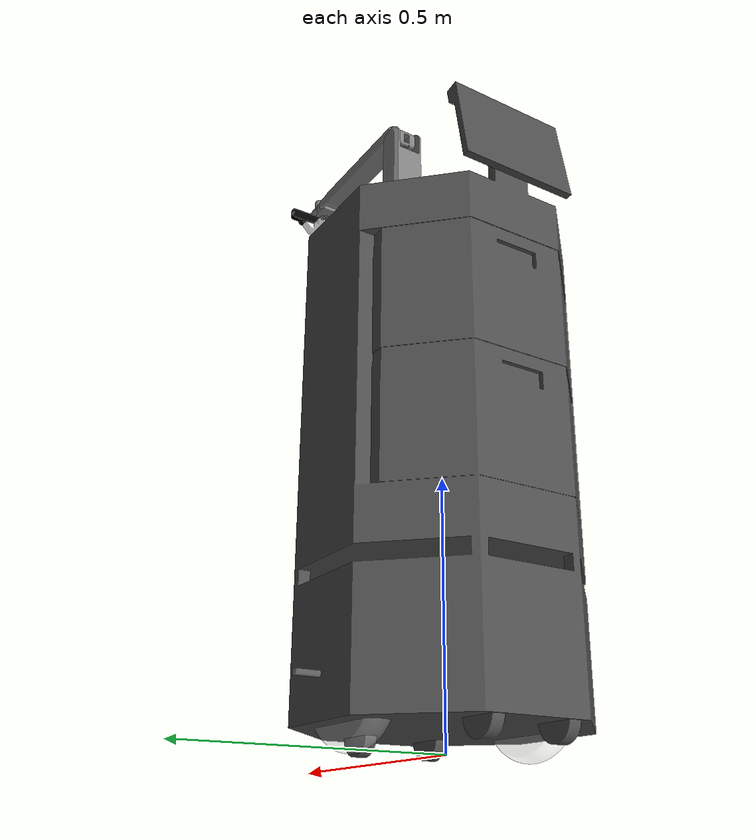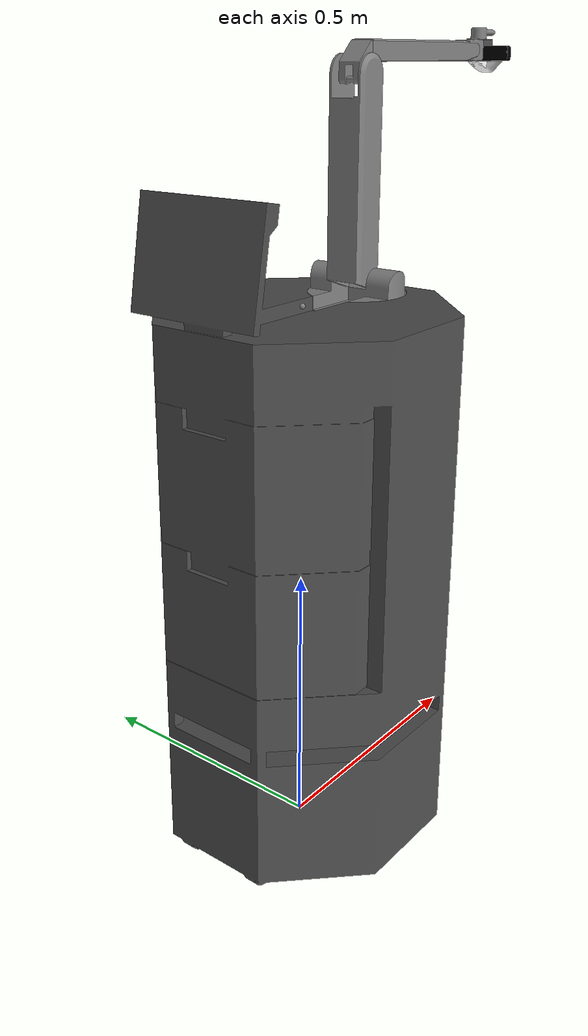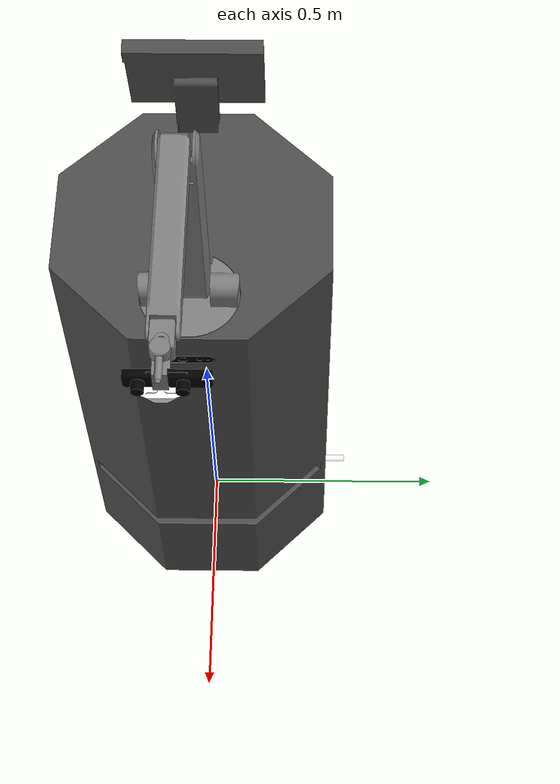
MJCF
<mujoco model="gc_manipulator">

    <!-- Mesh -->
    <compiler angle="radian" meshdir="./mesh" autolimits='true' />

    <!-- Option -->
    <option timestep="0.002" iterations="100" solver="Newton" gravity="0 0 -9.81" integrator="RK4"></option>

    <asset>
        <mesh name="base" file="base.stl" scale="0.001 0.001 0.001" />
        <mesh name="wheel" file="wheel.stl" scale="0.001 0.001 0.001" />
        <mesh name="camera_front" file="camera.stl" scale="0.001 0.001 0.001" />
        <mesh name="mani_ground" file="mani_ground.stl" scale="0.001 0.001 0.001" />
        <mesh name="mani_lnik1" file="mani_lnik1.stl" scale="0.001 0.001 0.001" />
        <mesh name="mani_link4" file="mani_link4.stl" scale="0.001 0.001 0.001" />
        <mesh name="mani_link5" file="mani_link5.stl" scale="0.001 0.001 0.001" />
        <mesh name="mani_link6" file="mani_link6.stl" scale="0.001 0.001 0.001" />
        <mesh name="mani_knock_tip" file="mani_knock_tip.stl" scale="0.001 0.001 0.001" />
        <mesh name="mani_zed" file="mani_zed.stl" scale="0.001 0.001 0.001" />

        <!-- for lidar sensor -->
        <mesh name="gc_lidar" file="lidar.stl" scale="0.001 0.001 0.001" />
    </asset>

    <default>
        <default class="gc_wheel">
            <geom fitscale="1.2" type="ellipsoid" friction="2.0 0.01 0.0" contype="1"
                conaffinity="0" mesh="wheel" mass="0.498952" />
        </default>
    </default>

    <worldbody>
        <body name="gc_mobile" pos="0 0 0.005">
            <!-- gc mobile base -->
            <geom type="mesh" rgba="0.3 0.3 0.3 1.0" contype="1" conaffinity="1" group="1"
                mesh="base" friction="0.01 0.01 0.00" priority="1" />
            <geom pos="0.244842 0.0175 0.935" type="mesh" contype="1" rgba="0 0 0 1" conaffinity="1"
                group="1" mesh="camera_front" />
            <joint name="gc_mobile_base_joint" type="free" />

            <!-- for sensor -->
            <site name="center_of_mass" pos="0 0 0.5" size="0.01" />
            <site name="gc_imu" pos="0.0 0 1.0" />
            <geom name="gc_lidar" pos="0 0 0.27" type="mesh" mass="0.180" mesh="gc_lidar"/>

            <body name="gc_wheel_fr" pos="0 0.1872 0.11" euler="0 0 0">
                <joint name="gc_mobile_right_wheel" pos="0 0 0" axis="0 1 0" range="-10 10"
                    limited="false" />
                <geom class="gc_wheel" type="mesh" contype="1" conaffinity="1" group="1"
                    rgba="1 1 1 0.3" />
            </body>

            <body name="gc_wheel_fl" pos="0 -0.1872 0.11">
                <joint name="gc_mobile_left_wheel" pos="0 0 0" axis="0 1 0" range="-10 10"
                    limited="false" />
                <geom class="gc_wheel" type="mesh" contype="1" conaffinity="1" group="1"
                    rgba="1 1 1 0.3" />
            </body>

            <body name="gc_manipulator_link1" pos="0.1565 0 1.02496">
                <inertial pos="0 0 0" quat="0.820473 0.339851 -0.17592 0.424708" mass="1"
                    diaginertia="1 1 1" />
                <joint name="gc_manipulator_joint1" pos="0 0 0" axis="0 0 1" limited="true"
                    range="-1.5708 1.5708" armature="0.1" damping="200" />
                <geom type="mesh" contype="1" conaffinity="1" group="1" mesh="mani_ground" />
                <body name="gc_manipulator_link2" pos="0 0 0">
                    <inertial pos="0.01 0 0" quat="0.820473 0.339851 -0.17592 0.424708" mass="1"
                        diaginertia="1 1 1" />
                    <joint name="gc_manipulator_joint2" pos="0 0 0" axis="0 1 0" limited="true"
                        range="-1.22173 1.5708" armature="0.1" damping="200" />
                    <geom quat="0.707107 0 0.707107 0" type="mesh" contype="1" conaffinity="1"
                        group="1" mesh="mani_lnik1" />
                    <body name="gc_manipulator_link3" pos="0 0 0.34">
                        <inertial pos="0.01 0 0" quat="0.820473 0.339851 -0.17592 0.424708" mass="1"
                            diaginertia="1 1 1" />
                        <joint name="gc_manipulator_joint3" pos="0 0 0" axis="0 1 0" limited="true"
                            range="-1.0472 1.5708" armature="0.1" damping="15" />
                        <geom type="mesh" contype="0" conaffinity="1" group="1" mesh="mani_link4" />
                        <body name="gc_manipulator_link4" pos="0.33787 0 0.038">
                            <inertial pos="0.01 0 0" quat="0.820473 0.339851 -0.17592 0.424708"
                                mass="1" diaginertia="1 1 1" />
                            <joint name="gc_manipulator_joint4" pos="0 0 0" axis="0 1 0"
                                limited="true" range="-1.74533 1.74533" armature="0.1" damping="15" />
                            <geom type="mesh" contype="0" conaffinity="1" group="1"
                                mesh="mani_link5" />
                            <body name="gc_manipulator_link5" pos="0.024 0 0">
                                <inertial pos="0.01 0 0" quat="0.820473 0.339851 -0.17592 0.424708"
                                    mass="1" diaginertia="1 1 1" />
                                <joint name="gc_manipulator_joint5" pos="0 0 0" axis="0 0 1"
                                    limited="true" range="-1.5708 1.5708" armature="0.1"
                                    damping="15" />
                                <geom type="mesh" contype="0" conaffinity="1" group="1"
                                    mesh="mani_link6" />

                                <!-- Knock tip -->
                                <geom type="mesh" contype="0" conaffinity="1" group="1"
                                    rgba="1 1 1 1" mesh="mani_knock_tip" />
                                <body name="eef_link" pos="0.078 0. 0.032">
                                    <geom size="0.001 0.001 0.001" pos="0 0. 0." contype="0"
                                        conaffinity="0"
                                        type="box" rgba="1.00 0.00 0.0 1" />
                                </body>

                                <!-- Zed -->
                                <geom pos="0.07045 0 -0.00569" type="mesh" contype="0"
                                    conaffinity="1" group="1" rgba="0 0 0 1" mesh="mani_zed" />
                                <!-- Camera center -->
                                <body name="camera_center" pos="0.05 0. 0">
                                    <geom size="0.005 0.005 0.005" pos="0 0. 0." contype="0"
                                        conaffinity="0"
                                        type="box" rgba="1.00 0.00 0.0 1" />
                                    <!-- Mounted camera -->
                                    <camera name="egocentric" pos="0 0 0" xyaxes="0 -1 -0.01 0 -1 0"
                                        fovy="45" />
                                </body>

                            </body>
                        </body>
                    </body>
                </body>
            </body>
        </body>

    </worldbody>

    <!-- Sensor -->
    <sensor>
        <framepos objtype="site" objname="center_of_mass" />

        <!-- for IMU sensor -->
        <accelerometer name="gc_accelerometer" site="gc_imu" />
        <gyro name="gc_gyro" site="gc_imu" />
        <velocimeter name="gc_velocimeter" site="gc_imu" />
    </sensor>

    <!--Contacts-->
    <contact>
        <exclude body1="gc_mobile" body2="gc_manipulator_link2" />
        <exclude body1="gc_manipulator_link1" body2="gc_manipulator_link2" />
        <exclude body1="gc_manipulator_link2" body2="gc_manipulator_link3" />
        <exclude body1="gc_manipulator_link3" body2="gc_manipulator_link4" />
        <exclude body1="gc_manipulator_link4" body2="gc_manipulator_link5" />
    </contact>

    <!--ACTUATORS-->
    <actuator>
        <!-- Velocity -->
        <velocity name="front_left_actuator" ctrllimited="true" ctrlrange="-10.0 10.0" gear="1"
            kv="1" joint="gc_mobile_left_wheel" />
        <velocity name="front_right_actuator" ctrllimited="true" ctrlrange="-10.0 10.0" gear="1"
            kv="1" joint="gc_mobile_right_wheel" />

        <!-- Position -->
        <position name="gc_manipulator_joint1_P" joint="gc_manipulator_joint1" kp="500"
            forcelimited="true" forcerange="-800 800" ctrllimited="true" ctrlrange="-1.5708 1.5708" />
        <position name="gc_manipulator_joint2_P" joint="gc_manipulator_joint2" kp="500"
            forcelimited="true" forcerange="-800 800" ctrllimited="true" ctrlrange="-1.22173 1.5708" />
        <position name="gc_manipulator_joint3_P" joint="gc_manipulator_joint3" kp="100"
            forcelimited="true" forcerange="-800 800" ctrllimited="true" ctrlrange="-1.0472 1.5708" />
        <position name="gc_manipulator_joint4_P" joint="gc_manipulator_joint4" kp="100"
            forcelimited="true" forcerange="-50 50" ctrllimited="true" ctrlrange="-1.74533 1.74533" />
        <position name="gc_manipulator_joint5_P" joint="gc_manipulator_joint5" kp="100"
            forcelimited="true" forcerange="-50 50" ctrllimited="true" ctrlrange="-1.5708 1.5708" />
    </actuator>

</mujoco>
